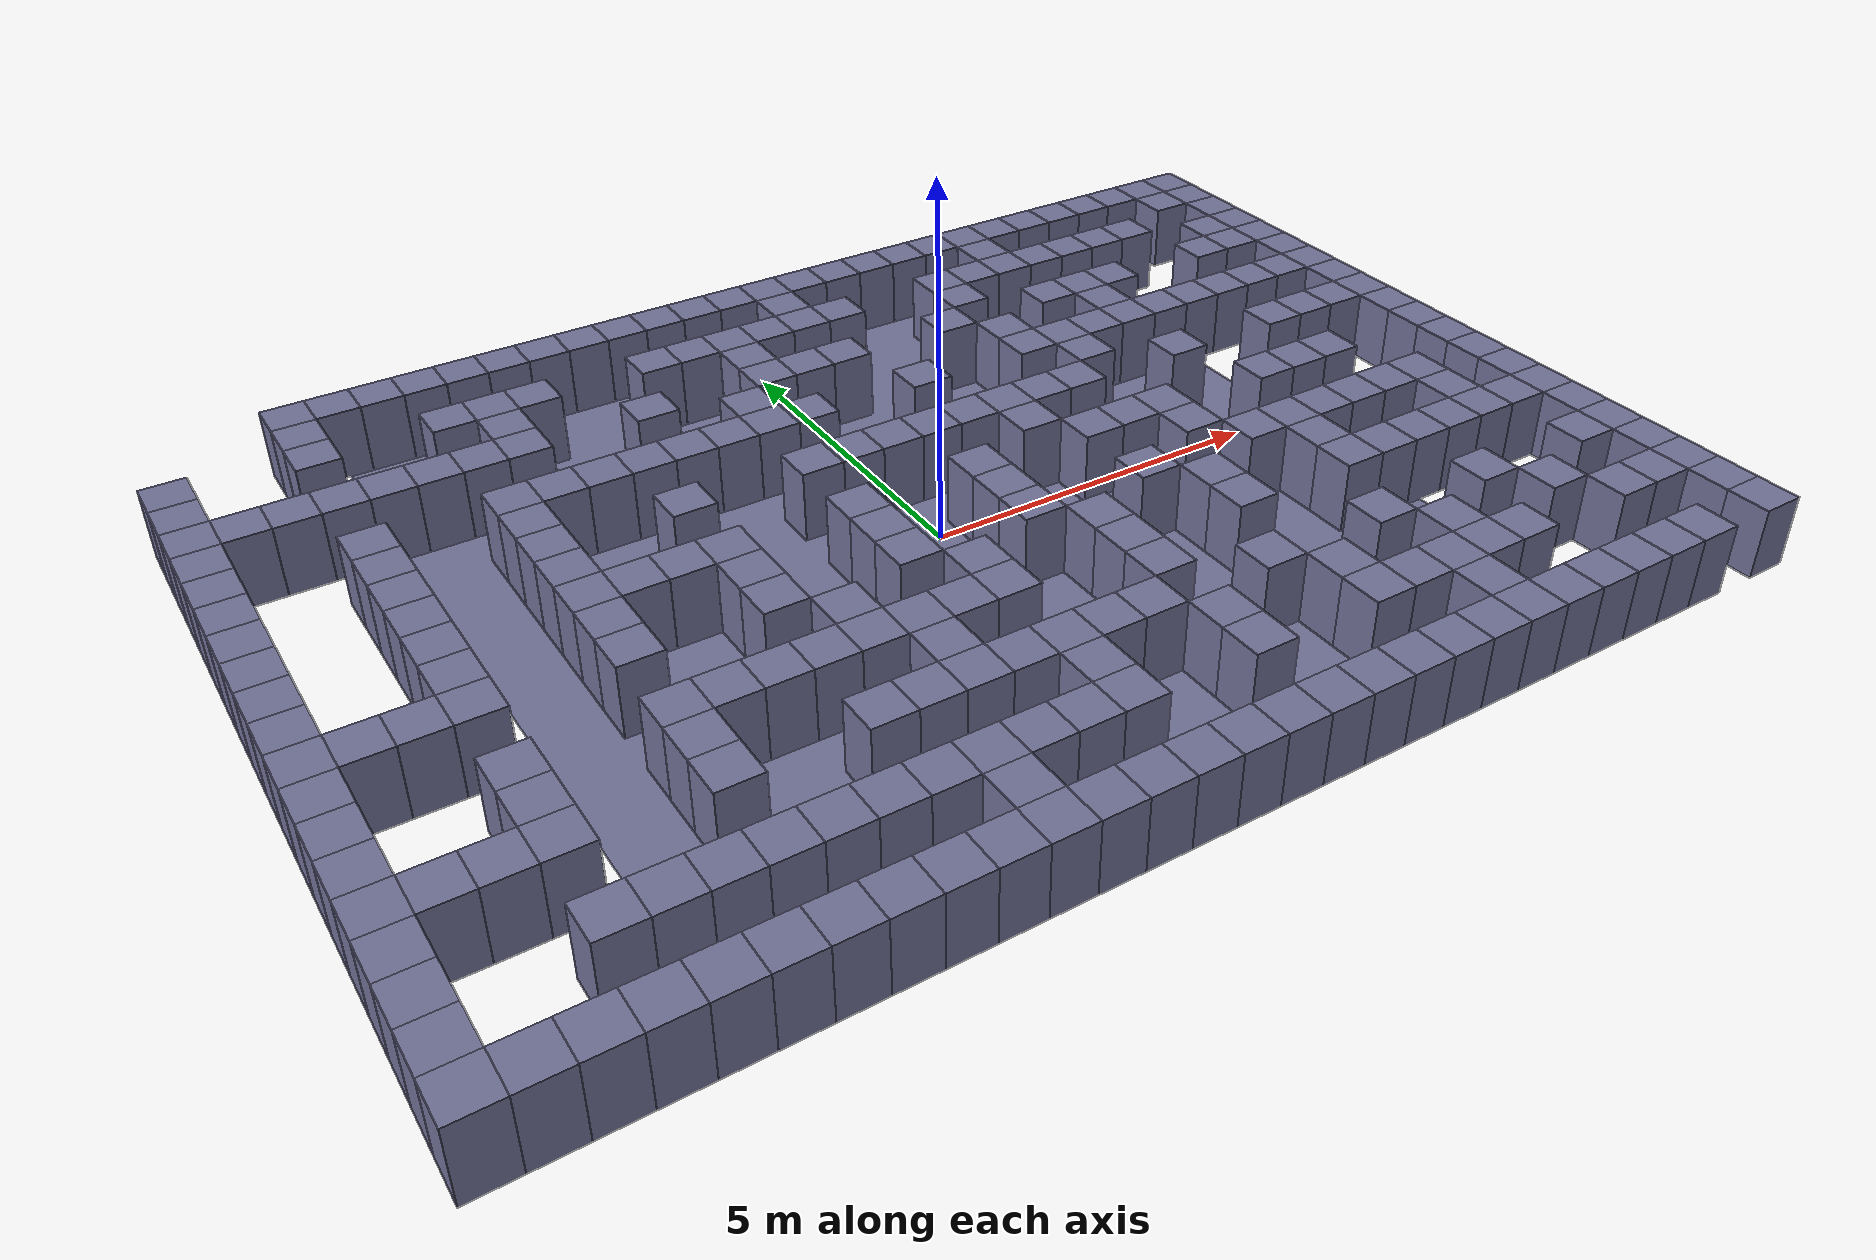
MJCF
<?xml version="1.0"?>
<mujoco model="pillar_maze">
  <compiler angle="radian" coordinate="local"/>
  <option gravity="0 0 -9.81" timestep="0.01" integrator="RK4"/>

  <default>
    <geom contype="1" conaffinity="1" friction="1 0.1 0.1" rgba="0.45 0.45 0.6 1"/>
  </default>

  <asset>
    <texture type="skybox" builtin="gradient" rgb1="0.3 0.5 0.7" rgb2="0 0 0" width="512" height="512"/>
    <texture name="floor_tex" type="2d" builtin="checker" rgb1="0.2 0.2 0.2" rgb2="0.3 0.3 0.3" width="512" height="512"/>
    <material name="floor_mat" texture="floor_tex" texrepeat="6 6" reflectance="0.2"/>
    <material name="wall_mat"  rgba="0.55 0.6 0.75 1"/>
  </asset>

  <worldbody>
    <geom name="floor" type="plane" pos="0 0 -0.02" size="6 6 0.1" material="floor_mat"/>

    <geom name="p_0_3" type="box" pos="-6.600 6.000 0.5" size="0.300 0.300 0.5" material="wall_mat"/>
    <geom name="p_0_4" type="box" pos="-6.000 6.000 0.5" size="0.300 0.300 0.5" material="wall_mat"/>
    <geom name="p_0_5" type="box" pos="-5.400 6.000 0.5" size="0.300 0.300 0.5" material="wall_mat"/>
    <geom name="p_0_6" type="box" pos="-4.800 6.000 0.5" size="0.300 0.300 0.5" material="wall_mat"/>
    <geom name="p_0_7" type="box" pos="-4.200 6.000 0.5" size="0.300 0.300 0.5" material="wall_mat"/>
    <geom name="p_0_8" type="box" pos="-3.600 6.000 0.5" size="0.300 0.300 0.5" material="wall_mat"/>
    <geom name="p_0_9" type="box" pos="-3.000 6.000 0.5" size="0.300 0.300 0.5" material="wall_mat"/>
    <geom name="p_0_10" type="box" pos="-2.400 6.000 0.5" size="0.300 0.300 0.5" material="wall_mat"/>
    <geom name="p_0_11" type="box" pos="-1.800 6.000 0.5" size="0.300 0.300 0.5" material="wall_mat"/>
    <geom name="p_0_12" type="box" pos="-1.200 6.000 0.5" size="0.300 0.300 0.5" material="wall_mat"/>
    <geom name="p_0_13" type="box" pos="-0.600 6.000 0.5" size="0.300 0.300 0.5" material="wall_mat"/>
    <geom name="p_0_14" type="box" pos="0.000 6.000 0.5" size="0.300 0.300 0.5" material="wall_mat"/>
    <geom name="p_0_15" type="box" pos="0.600 6.000 0.5" size="0.300 0.300 0.5" material="wall_mat"/>
    <geom name="p_0_16" type="box" pos="1.200 6.000 0.5" size="0.300 0.300 0.5" material="wall_mat"/>
    <geom name="p_0_17" type="box" pos="1.800 6.000 0.5" size="0.300 0.300 0.5" material="wall_mat"/>
    <geom name="p_0_18" type="box" pos="2.400 6.000 0.5" size="0.300 0.300 0.5" material="wall_mat"/>
    <geom name="p_0_19" type="box" pos="3.000 6.000 0.5" size="0.300 0.300 0.5" material="wall_mat"/>
    <geom name="p_0_20" type="box" pos="3.600 6.000 0.5" size="0.300 0.300 0.5" material="wall_mat"/>
    <geom name="p_0_21" type="box" pos="4.200 6.000 0.5" size="0.300 0.300 0.5" material="wall_mat"/>
    <geom name="p_0_22" type="box" pos="4.800 6.000 0.5" size="0.300 0.300 0.5" material="wall_mat"/>
    <geom name="p_0_23" type="box" pos="5.400 6.000 0.5" size="0.300 0.300 0.5" material="wall_mat"/>
    <geom name="p_0_24" type="box" pos="6.000 6.000 0.5" size="0.300 0.300 0.5" material="wall_mat"/>
    <geom name="p_0_25" type="box" pos="6.600 6.000 0.5" size="0.300 0.300 0.5" material="wall_mat"/>
    <geom name="p_0_26" type="box" pos="7.200 6.000 0.5" size="0.300 0.300 0.5" material="wall_mat"/>
    <geom name="p_0_27" type="box" pos="7.800 6.000 0.5" size="0.300 0.300 0.5" material="wall_mat"/>
    <geom name="p_0_28" type="box" pos="8.400 6.000 0.5" size="0.300 0.300 0.5" material="wall_mat"/>
    <geom name="p_1_3" type="box" pos="-6.600 5.400 0.5" size="0.300 0.300 0.5" material="wall_mat"/>
    <geom name="p_1_15" type="box" pos="0.600 5.400 0.5" size="0.300 0.300 0.5" material="wall_mat"/>
    <geom name="p_1_21" type="box" pos="4.200 5.400 0.5" size="0.300 0.300 0.5" material="wall_mat"/>
    <geom name="p_1_27" type="box" pos="7.800 5.400 0.5" size="0.300 0.300 0.5" material="wall_mat"/>
    <geom name="p_1_28" type="box" pos="8.400 5.400 0.5" size="0.300 0.300 0.5" material="wall_mat"/>
    <geom name="p_2_0" type="box" pos="-8.400 4.800 0.5" size="0.300 0.300 0.5" material="wall_mat"/>
    <geom name="p_2_3" type="box" pos="-6.600 4.800 0.5" size="0.300 0.300 0.5" material="wall_mat"/>
    <geom name="p_2_6" type="box" pos="-4.800 4.800 0.5" size="0.300 0.300 0.5" material="wall_mat"/>
    <geom name="p_2_7" type="box" pos="-4.200 4.800 0.5" size="0.300 0.300 0.5" material="wall_mat"/>
    <geom name="p_2_8" type="box" pos="-3.600 4.800 0.5" size="0.300 0.300 0.5" material="wall_mat"/>
    <geom name="p_2_11" type="box" pos="-1.800 4.800 0.5" size="0.300 0.300 0.5" material="wall_mat"/>
    <geom name="p_2_12" type="box" pos="-1.200 4.800 0.5" size="0.300 0.300 0.5" material="wall_mat"/>
    <geom name="p_2_13" type="box" pos="-0.600 4.800 0.5" size="0.300 0.300 0.5" material="wall_mat"/>
    <geom name="p_2_14" type="box" pos="0.000 4.800 0.5" size="0.300 0.300 0.5" material="wall_mat"/>
    <geom name="p_2_15" type="box" pos="0.600 4.800 0.5" size="0.300 0.300 0.5" material="wall_mat"/>
    <geom name="p_2_16" type="box" pos="1.200 4.800 0.5" size="0.300 0.300 0.5" material="wall_mat"/>
    <geom name="p_2_19" type="box" pos="3.000 4.800 0.5" size="0.300 0.300 0.5" material="wall_mat"/>
    <geom name="p_2_20" type="box" pos="3.600 4.800 0.5" size="0.300 0.300 0.5" material="wall_mat"/>
    <geom name="p_2_21" type="box" pos="4.200 4.800 0.5" size="0.300 0.300 0.5" material="wall_mat"/>
    <geom name="p_2_22" type="box" pos="4.800 4.800 0.5" size="0.300 0.300 0.5" material="wall_mat"/>
    <geom name="p_2_23" type="box" pos="5.400 4.800 0.5" size="0.300 0.300 0.5" material="wall_mat"/>
    <geom name="p_2_24" type="box" pos="6.000 4.800 0.5" size="0.300 0.300 0.5" material="wall_mat"/>
    <geom name="p_2_25" type="box" pos="6.600 4.800 0.5" size="0.300 0.300 0.5" material="wall_mat"/>
    <geom name="p_2_28" type="box" pos="8.400 4.800 0.5" size="0.300 0.300 0.5" material="wall_mat"/>
    <geom name="p_3_0" type="box" pos="-8.400 4.200 0.5" size="0.300 0.300 0.5" material="wall_mat"/>
    <geom name="p_3_7" type="box" pos="-4.200 4.200 0.5" size="0.300 0.300 0.5" material="wall_mat"/>
    <geom name="p_3_13" type="box" pos="-0.600 4.200 0.5" size="0.300 0.300 0.5" material="wall_mat"/>
    <geom name="p_3_19" type="box" pos="3.000 4.200 0.5" size="0.300 0.300 0.5" material="wall_mat"/>
    <geom name="p_3_27" type="box" pos="7.800 4.200 0.5" size="0.300 0.300 0.5" material="wall_mat"/>
    <geom name="p_3_28" type="box" pos="8.400 4.200 0.5" size="0.300 0.300 0.5" material="wall_mat"/>
    <geom name="p_4_0" type="box" pos="-8.400 3.600 0.5" size="0.300 0.300 0.5" material="wall_mat"/>
    <geom name="p_4_1" type="box" pos="-7.800 3.600 0.5" size="0.300 0.300 0.5" material="wall_mat"/>
    <geom name="p_4_2" type="box" pos="-7.200 3.600 0.5" size="0.300 0.300 0.5" material="wall_mat"/>
    <geom name="p_4_3" type="box" pos="-6.600 3.600 0.5" size="0.300 0.300 0.5" material="wall_mat"/>
    <geom name="p_4_4" type="box" pos="-6.000 3.600 0.5" size="0.300 0.300 0.5" material="wall_mat"/>
    <geom name="p_4_5" type="box" pos="-5.400 3.600 0.5" size="0.300 0.300 0.5" material="wall_mat"/>
    <geom name="p_4_6" type="box" pos="-4.800 3.600 0.5" size="0.300 0.300 0.5" material="wall_mat"/>
    <geom name="p_4_7" type="box" pos="-4.200 3.600 0.5" size="0.300 0.300 0.5" material="wall_mat"/>
    <geom name="p_4_10" type="box" pos="-2.400 3.600 0.5" size="0.300 0.300 0.5" material="wall_mat"/>
    <geom name="p_4_13" type="box" pos="-0.600 3.600 0.5" size="0.300 0.300 0.5" material="wall_mat"/>
    <geom name="p_4_14" type="box" pos="0.000 3.600 0.5" size="0.300 0.300 0.5" material="wall_mat"/>
    <geom name="p_4_15" type="box" pos="0.600 3.600 0.5" size="0.300 0.300 0.5" material="wall_mat"/>
    <geom name="p_4_18" type="box" pos="2.400 3.600 0.5" size="0.300 0.300 0.5" material="wall_mat"/>
    <geom name="p_4_21" type="box" pos="4.200 3.600 0.5" size="0.300 0.300 0.5" material="wall_mat"/>
    <geom name="p_4_22" type="box" pos="4.800 3.600 0.5" size="0.300 0.300 0.5" material="wall_mat"/>
    <geom name="p_4_23" type="box" pos="5.400 3.600 0.5" size="0.300 0.300 0.5" material="wall_mat"/>
    <geom name="p_4_26" type="box" pos="7.200 3.600 0.5" size="0.300 0.300 0.5" material="wall_mat"/>
    <geom name="p_4_27" type="box" pos="7.800 3.600 0.5" size="0.300 0.300 0.5" material="wall_mat"/>
    <geom name="p_4_28" type="box" pos="8.400 3.600 0.5" size="0.300 0.300 0.5" material="wall_mat"/>
    <geom name="p_5_0" type="box" pos="-8.400 3.000 0.5" size="0.300 0.300 0.5" material="wall_mat"/>
    <geom name="p_5_12" type="box" pos="-1.200 3.000 0.5" size="0.300 0.300 0.5" material="wall_mat"/>
    <geom name="p_5_19" type="box" pos="3.000 3.000 0.5" size="0.300 0.300 0.5" material="wall_mat"/>
    <geom name="p_5_22" type="box" pos="4.800 3.000 0.5" size="0.300 0.300 0.5" material="wall_mat"/>
    <geom name="p_5_28" type="box" pos="8.400 3.000 0.5" size="0.300 0.300 0.5" material="wall_mat"/>
    <geom name="p_6_0" type="box" pos="-8.400 2.400 0.5" size="0.300 0.300 0.5" material="wall_mat"/>
    <geom name="p_6_3" type="box" pos="-6.600 2.400 0.5" size="0.300 0.300 0.5" material="wall_mat"/>
    <geom name="p_6_6" type="box" pos="-4.800 2.400 0.5" size="0.300 0.300 0.5" material="wall_mat"/>
    <geom name="p_6_7" type="box" pos="-4.200 2.400 0.5" size="0.300 0.300 0.5" material="wall_mat"/>
    <geom name="p_6_8" type="box" pos="-3.600 2.400 0.5" size="0.300 0.300 0.5" material="wall_mat"/>
    <geom name="p_6_9" type="box" pos="-3.000 2.400 0.5" size="0.300 0.300 0.5" material="wall_mat"/>
    <geom name="p_6_10" type="box" pos="-2.400 2.400 0.5" size="0.300 0.300 0.5" material="wall_mat"/>
    <geom name="p_6_11" type="box" pos="-1.800 2.400 0.5" size="0.300 0.300 0.5" material="wall_mat"/>
    <geom name="p_6_12" type="box" pos="-1.200 2.400 0.5" size="0.300 0.300 0.5" material="wall_mat"/>
    <geom name="p_6_13" type="box" pos="-0.600 2.400 0.5" size="0.300 0.300 0.5" material="wall_mat"/>
    <geom name="p_6_16" type="box" pos="1.200 2.400 0.5" size="0.300 0.300 0.5" material="wall_mat"/>
    <geom name="p_6_19" type="box" pos="3.000 2.400 0.5" size="0.300 0.300 0.5" material="wall_mat"/>
    <geom name="p_6_20" type="box" pos="3.600 2.400 0.5" size="0.300 0.300 0.5" material="wall_mat"/>
    <geom name="p_6_21" type="box" pos="4.200 2.400 0.5" size="0.300 0.300 0.5" material="wall_mat"/>
    <geom name="p_6_22" type="box" pos="4.800 2.400 0.5" size="0.300 0.300 0.5" material="wall_mat"/>
    <geom name="p_6_23" type="box" pos="5.400 2.400 0.5" size="0.300 0.300 0.5" material="wall_mat"/>
    <geom name="p_6_24" type="box" pos="6.000 2.400 0.5" size="0.300 0.300 0.5" material="wall_mat"/>
    <geom name="p_6_25" type="box" pos="6.600 2.400 0.5" size="0.300 0.300 0.5" material="wall_mat"/>
    <geom name="p_6_26" type="box" pos="7.200 2.400 0.5" size="0.300 0.300 0.5" material="wall_mat"/>
    <geom name="p_6_27" type="box" pos="7.800 2.400 0.5" size="0.300 0.300 0.5" material="wall_mat"/>
    <geom name="p_6_28" type="box" pos="8.400 2.400 0.5" size="0.300 0.300 0.5" material="wall_mat"/>
    <geom name="p_7_0" type="box" pos="-8.400 1.800 0.5" size="0.300 0.300 0.5" material="wall_mat"/>
    <geom name="p_7_3" type="box" pos="-6.600 1.800 0.5" size="0.300 0.300 0.5" material="wall_mat"/>
    <geom name="p_7_6" type="box" pos="-4.800 1.800 0.5" size="0.300 0.300 0.5" material="wall_mat"/>
    <geom name="p_7_20" type="box" pos="3.600 1.800 0.5" size="0.300 0.300 0.5" material="wall_mat"/>
    <geom name="p_7_28" type="box" pos="8.400 1.800 0.5" size="0.300 0.300 0.5" material="wall_mat"/>
    <geom name="p_8_0" type="box" pos="-8.400 1.200 0.5" size="0.300 0.300 0.5" material="wall_mat"/>
    <geom name="p_8_3" type="box" pos="-6.600 1.200 0.5" size="0.300 0.300 0.5" material="wall_mat"/>
    <geom name="p_8_6" type="box" pos="-4.800 1.200 0.5" size="0.300 0.300 0.5" material="wall_mat"/>
    <geom name="p_8_9" type="box" pos="-3.000 1.200 0.5" size="0.300 0.300 0.5" material="wall_mat"/>
    <geom name="p_8_12" type="box" pos="-1.200 1.200 0.5" size="0.300 0.300 0.5" material="wall_mat"/>
    <geom name="p_8_13" type="box" pos="-0.600 1.200 0.5" size="0.300 0.300 0.5" material="wall_mat"/>
    <geom name="p_8_14" type="box" pos="0.000 1.200 0.5" size="0.300 0.300 0.5" material="wall_mat"/>
    <geom name="p_8_15" type="box" pos="0.600 1.200 0.5" size="0.300 0.300 0.5" material="wall_mat"/>
    <geom name="p_8_16" type="box" pos="1.200 1.200 0.5" size="0.300 0.300 0.5" material="wall_mat"/>
    <geom name="p_8_17" type="box" pos="1.800 1.200 0.5" size="0.300 0.300 0.5" material="wall_mat"/>
    <geom name="p_8_18" type="box" pos="2.400 1.200 0.5" size="0.300 0.300 0.5" material="wall_mat"/>
    <geom name="p_8_19" type="box" pos="3.000 1.200 0.5" size="0.300 0.300 0.5" material="wall_mat"/>
    <geom name="p_8_22" type="box" pos="4.800 1.200 0.5" size="0.300 0.300 0.5" material="wall_mat"/>
    <geom name="p_8_25" type="box" pos="6.600 1.200 0.5" size="0.300 0.300 0.5" material="wall_mat"/>
    <geom name="p_8_26" type="box" pos="7.200 1.200 0.5" size="0.300 0.300 0.5" material="wall_mat"/>
    <geom name="p_8_27" type="box" pos="7.800 1.200 0.5" size="0.300 0.300 0.5" material="wall_mat"/>
    <geom name="p_8_28" type="box" pos="8.400 1.200 0.5" size="0.300 0.300 0.5" material="wall_mat"/>
    <geom name="p_9_0" type="box" pos="-8.400 0.600 0.5" size="0.300 0.300 0.5" material="wall_mat"/>
    <geom name="p_9_3" type="box" pos="-6.600 0.600 0.5" size="0.300 0.300 0.5" material="wall_mat"/>
    <geom name="p_9_6" type="box" pos="-4.800 0.600 0.5" size="0.300 0.300 0.5" material="wall_mat"/>
    <geom name="p_9_17" type="box" pos="1.800 0.600 0.5" size="0.300 0.300 0.5" material="wall_mat"/>
    <geom name="p_9_28" type="box" pos="8.400 0.600 0.5" size="0.300 0.300 0.5" material="wall_mat"/>
    <geom name="p_10_0" type="box" pos="-8.400 0.000 0.5" size="0.300 0.300 0.5" material="wall_mat"/>
    <geom name="p_10_3" type="box" pos="-6.600 0.000 0.5" size="0.300 0.300 0.5" material="wall_mat"/>
    <geom name="p_10_6" type="box" pos="-4.800 0.000 0.5" size="0.300 0.300 0.5" material="wall_mat"/>
    <geom name="p_10_7" type="box" pos="-4.200 0.000 0.5" size="0.300 0.300 0.5" material="wall_mat"/>
    <geom name="p_10_8" type="box" pos="-3.600 0.000 0.5" size="0.300 0.300 0.5" material="wall_mat"/>
    <geom name="p_10_9" type="box" pos="-3.000 0.000 0.5" size="0.300 0.300 0.5" material="wall_mat"/>
    <geom name="p_10_12" type="box" pos="-1.200 0.000 0.5" size="0.300 0.300 0.5" material="wall_mat"/>
    <geom name="p_10_15" type="box" pos="0.600 0.000 0.5" size="0.300 0.300 0.5" material="wall_mat"/>
    <geom name="p_10_18" type="box" pos="2.400 0.000 0.5" size="0.300 0.300 0.5" material="wall_mat"/>
    <geom name="p_10_19" type="box" pos="3.000 0.000 0.5" size="0.300 0.300 0.5" material="wall_mat"/>
    <geom name="p_10_20" type="box" pos="3.600 0.000 0.5" size="0.300 0.300 0.5" material="wall_mat"/>
    <geom name="p_10_23" type="box" pos="5.400 0.000 0.5" size="0.300 0.300 0.5" material="wall_mat"/>
    <geom name="p_10_24" type="box" pos="6.000 0.000 0.5" size="0.300 0.300 0.5" material="wall_mat"/>
    <geom name="p_10_25" type="box" pos="6.600 0.000 0.5" size="0.300 0.300 0.5" material="wall_mat"/>
    <geom name="p_10_28" type="box" pos="8.400 0.000 0.5" size="0.300 0.300 0.5" material="wall_mat"/>
    <geom name="p_11_0" type="box" pos="-8.400 -0.600 0.5" size="0.300 0.300 0.5" material="wall_mat"/>
    <geom name="p_11_3" type="box" pos="-6.600 -0.600 0.5" size="0.300 0.300 0.5" material="wall_mat"/>
    <geom name="p_11_6" type="box" pos="-4.800 -0.600 0.5" size="0.300 0.300 0.5" material="wall_mat"/>
    <geom name="p_11_9" type="box" pos="-3.000 -0.600 0.5" size="0.300 0.300 0.5" material="wall_mat"/>
    <geom name="p_11_12" type="box" pos="-1.200 -0.600 0.5" size="0.300 0.300 0.5" material="wall_mat"/>
    <geom name="p_11_15" type="box" pos="0.600 -0.600 0.5" size="0.300 0.300 0.5" material="wall_mat"/>
    <geom name="p_11_20" type="box" pos="3.600 -0.600 0.5" size="0.300 0.300 0.5" material="wall_mat"/>
    <geom name="p_11_28" type="box" pos="8.400 -0.600 0.5" size="0.300 0.300 0.5" material="wall_mat"/>
    <geom name="p_12_0" type="box" pos="-8.400 -1.200 0.5" size="0.300 0.300 0.5" material="wall_mat"/>
    <geom name="p_12_1" type="box" pos="-7.800 -1.200 0.5" size="0.300 0.300 0.5" material="wall_mat"/>
    <geom name="p_12_2" type="box" pos="-7.200 -1.200 0.5" size="0.300 0.300 0.5" material="wall_mat"/>
    <geom name="p_12_3" type="box" pos="-6.600 -1.200 0.5" size="0.300 0.300 0.5" material="wall_mat"/>
    <geom name="p_12_6" type="box" pos="-4.800 -1.200 0.5" size="0.300 0.300 0.5" material="wall_mat"/>
    <geom name="p_12_9" type="box" pos="-3.000 -1.200 0.5" size="0.300 0.300 0.5" material="wall_mat"/>
    <geom name="p_12_12" type="box" pos="-1.200 -1.200 0.5" size="0.300 0.300 0.5" material="wall_mat"/>
    <geom name="p_12_15" type="box" pos="0.600 -1.200 0.5" size="0.300 0.300 0.5" material="wall_mat"/>
    <geom name="p_12_18" type="box" pos="2.400 -1.200 0.5" size="0.300 0.300 0.5" material="wall_mat"/>
    <geom name="p_12_21" type="box" pos="4.200 -1.200 0.5" size="0.300 0.300 0.5" material="wall_mat"/>
    <geom name="p_12_22" type="box" pos="4.800 -1.200 0.5" size="0.300 0.300 0.5" material="wall_mat"/>
    <geom name="p_12_23" type="box" pos="5.400 -1.200 0.5" size="0.300 0.300 0.5" material="wall_mat"/>
    <geom name="p_12_24" type="box" pos="6.000 -1.200 0.5" size="0.300 0.300 0.5" material="wall_mat"/>
    <geom name="p_12_25" type="box" pos="6.600 -1.200 0.5" size="0.300 0.300 0.5" material="wall_mat"/>
    <geom name="p_12_26" type="box" pos="7.200 -1.200 0.5" size="0.300 0.300 0.5" material="wall_mat"/>
    <geom name="p_12_28" type="box" pos="8.400 -1.200 0.5" size="0.300 0.300 0.5" material="wall_mat"/>
    <geom name="p_13_0" type="box" pos="-8.400 -1.800 0.5" size="0.300 0.300 0.5" material="wall_mat"/>
    <geom name="p_13_10" type="box" pos="-2.400 -1.800 0.5" size="0.300 0.300 0.5" material="wall_mat"/>
    <geom name="p_13_13" type="box" pos="-0.600 -1.800 0.5" size="0.300 0.300 0.5" material="wall_mat"/>
    <geom name="p_13_16" type="box" pos="1.200 -1.800 0.5" size="0.300 0.300 0.5" material="wall_mat"/>
    <geom name="p_13_19" type="box" pos="3.000 -1.800 0.5" size="0.300 0.300 0.5" material="wall_mat"/>
    <geom name="p_13_22" type="box" pos="4.800 -1.800 0.5" size="0.300 0.300 0.5" material="wall_mat"/>
    <geom name="p_13_26" type="box" pos="7.200 -1.800 0.5" size="0.300 0.300 0.5" material="wall_mat"/>
    <geom name="p_13_28" type="box" pos="8.400 -1.800 0.5" size="0.300 0.300 0.5" material="wall_mat"/>
    <geom name="p_14_0" type="box" pos="-8.400 -2.400 0.5" size="0.300 0.300 0.5" material="wall_mat"/>
    <geom name="p_14_3" type="box" pos="-6.600 -2.400 0.5" size="0.300 0.300 0.5" material="wall_mat"/>
    <geom name="p_14_6" type="box" pos="-4.800 -2.400 0.5" size="0.300 0.300 0.5" material="wall_mat"/>
    <geom name="p_14_7" type="box" pos="-4.200 -2.400 0.5" size="0.300 0.300 0.5" material="wall_mat"/>
    <geom name="p_14_8" type="box" pos="-3.600 -2.400 0.5" size="0.300 0.300 0.5" material="wall_mat"/>
    <geom name="p_14_9" type="box" pos="-3.000 -2.400 0.5" size="0.300 0.300 0.5" material="wall_mat"/>
    <geom name="p_14_10" type="box" pos="-2.400 -2.400 0.5" size="0.300 0.300 0.5" material="wall_mat"/>
    <geom name="p_14_11" type="box" pos="-1.800 -2.400 0.5" size="0.300 0.300 0.5" material="wall_mat"/>
    <geom name="p_14_12" type="box" pos="-1.200 -2.400 0.5" size="0.300 0.300 0.5" material="wall_mat"/>
    <geom name="p_14_13" type="box" pos="-0.600 -2.400 0.5" size="0.300 0.300 0.5" material="wall_mat"/>
    <geom name="p_14_16" type="box" pos="1.200 -2.400 0.5" size="0.300 0.300 0.5" material="wall_mat"/>
    <geom name="p_14_19" type="box" pos="3.000 -2.400 0.5" size="0.300 0.300 0.5" material="wall_mat"/>
    <geom name="p_14_22" type="box" pos="4.800 -2.400 0.5" size="0.300 0.300 0.5" material="wall_mat"/>
    <geom name="p_14_23" type="box" pos="5.400 -2.400 0.5" size="0.300 0.300 0.5" material="wall_mat"/>
    <geom name="p_14_24" type="box" pos="6.000 -2.400 0.5" size="0.300 0.300 0.5" material="wall_mat"/>
    <geom name="p_14_25" type="box" pos="6.600 -2.400 0.5" size="0.300 0.300 0.5" material="wall_mat"/>
    <geom name="p_14_26" type="box" pos="7.200 -2.400 0.5" size="0.300 0.300 0.5" material="wall_mat"/>
    <geom name="p_14_27" type="box" pos="7.800 -2.400 0.5" size="0.300 0.300 0.5" material="wall_mat"/>
    <geom name="p_14_28" type="box" pos="8.400 -2.400 0.5" size="0.300 0.300 0.5" material="wall_mat"/>
    <geom name="p_15_0" type="box" pos="-8.400 -3.000 0.5" size="0.300 0.300 0.5" material="wall_mat"/>
    <geom name="p_15_3" type="box" pos="-6.600 -3.000 0.5" size="0.300 0.300 0.5" material="wall_mat"/>
    <geom name="p_15_6" type="box" pos="-4.800 -3.000 0.5" size="0.300 0.300 0.5" material="wall_mat"/>
    <geom name="p_15_11" type="box" pos="-1.800 -3.000 0.5" size="0.300 0.300 0.5" material="wall_mat"/>
    <geom name="p_15_16" type="box" pos="1.200 -3.000 0.5" size="0.300 0.300 0.5" material="wall_mat"/>
    <geom name="p_15_28" type="box" pos="8.400 -3.000 0.5" size="0.300 0.300 0.5" material="wall_mat"/>
    <geom name="p_16_0" type="box" pos="-8.400 -3.600 0.5" size="0.300 0.300 0.5" material="wall_mat"/>
    <geom name="p_16_1" type="box" pos="-7.800 -3.600 0.5" size="0.300 0.300 0.5" material="wall_mat"/>
    <geom name="p_16_2" type="box" pos="-7.200 -3.600 0.5" size="0.300 0.300 0.5" material="wall_mat"/>
    <geom name="p_16_3" type="box" pos="-6.600 -3.600 0.5" size="0.300 0.300 0.5" material="wall_mat"/>
    <geom name="p_16_6" type="box" pos="-4.800 -3.600 0.5" size="0.300 0.300 0.5" material="wall_mat"/>
    <geom name="p_16_9" type="box" pos="-3.000 -3.600 0.5" size="0.300 0.300 0.5" material="wall_mat"/>
    <geom name="p_16_10" type="box" pos="-2.400 -3.600 0.5" size="0.300 0.300 0.5" material="wall_mat"/>
    <geom name="p_16_11" type="box" pos="-1.800 -3.600 0.5" size="0.300 0.300 0.5" material="wall_mat"/>
    <geom name="p_16_12" type="box" pos="-1.200 -3.600 0.5" size="0.300 0.300 0.5" material="wall_mat"/>
    <geom name="p_16_13" type="box" pos="-0.600 -3.600 0.5" size="0.300 0.300 0.5" material="wall_mat"/>
    <geom name="p_16_14" type="box" pos="0.000 -3.600 0.5" size="0.300 0.300 0.5" material="wall_mat"/>
    <geom name="p_16_15" type="box" pos="0.600 -3.600 0.5" size="0.300 0.300 0.5" material="wall_mat"/>
    <geom name="p_16_18" type="box" pos="2.400 -3.600 0.5" size="0.300 0.300 0.5" material="wall_mat"/>
    <geom name="p_16_21" type="box" pos="4.200 -3.600 0.5" size="0.300 0.300 0.5" material="wall_mat"/>
    <geom name="p_16_24" type="box" pos="6.000 -3.600 0.5" size="0.300 0.300 0.5" material="wall_mat"/>
    <geom name="p_16_27" type="box" pos="7.800 -3.600 0.5" size="0.300 0.300 0.5" material="wall_mat"/>
    <geom name="p_16_28" type="box" pos="8.400 -3.600 0.5" size="0.300 0.300 0.5" material="wall_mat"/>
    <geom name="p_17_0" type="box" pos="-8.400 -4.200 0.5" size="0.300 0.300 0.5" material="wall_mat"/>
    <geom name="p_17_13" type="box" pos="-0.600 -4.200 0.5" size="0.300 0.300 0.5" material="wall_mat"/>
    <geom name="p_17_16" type="box" pos="1.200 -4.200 0.5" size="0.300 0.300 0.5" material="wall_mat"/>
    <geom name="p_17_19" type="box" pos="3.000 -4.200 0.5" size="0.300 0.300 0.5" material="wall_mat"/>
    <geom name="p_17_22" type="box" pos="4.800 -4.200 0.5" size="0.300 0.300 0.5" material="wall_mat"/>
    <geom name="p_17_25" type="box" pos="6.600 -4.200 0.5" size="0.300 0.300 0.5" material="wall_mat"/>
    <geom name="p_17_28" type="box" pos="8.400 -4.200 0.5" size="0.300 0.300 0.5" material="wall_mat"/>
    <geom name="p_18_0" type="box" pos="-8.400 -4.800 0.5" size="0.300 0.300 0.5" material="wall_mat"/>
    <geom name="p_18_3" type="box" pos="-6.600 -4.800 0.5" size="0.300 0.300 0.5" material="wall_mat"/>
    <geom name="p_18_4" type="box" pos="-6.000 -4.800 0.5" size="0.300 0.300 0.5" material="wall_mat"/>
    <geom name="p_18_5" type="box" pos="-5.400 -4.800 0.5" size="0.300 0.300 0.5" material="wall_mat"/>
    <geom name="p_18_6" type="box" pos="-4.800 -4.800 0.5" size="0.300 0.300 0.5" material="wall_mat"/>
    <geom name="p_18_7" type="box" pos="-4.200 -4.800 0.5" size="0.300 0.300 0.5" material="wall_mat"/>
    <geom name="p_18_8" type="box" pos="-3.600 -4.800 0.5" size="0.300 0.300 0.5" material="wall_mat"/>
    <geom name="p_18_9" type="box" pos="-3.000 -4.800 0.5" size="0.300 0.300 0.5" material="wall_mat"/>
    <geom name="p_18_10" type="box" pos="-2.400 -4.800 0.5" size="0.300 0.300 0.5" material="wall_mat"/>
    <geom name="p_18_11" type="box" pos="-1.800 -4.800 0.5" size="0.300 0.300 0.5" material="wall_mat"/>
    <geom name="p_18_12" type="box" pos="-1.200 -4.800 0.5" size="0.300 0.300 0.5" material="wall_mat"/>
    <geom name="p_18_13" type="box" pos="-0.600 -4.800 0.5" size="0.300 0.300 0.5" material="wall_mat"/>
    <geom name="p_18_16" type="box" pos="1.200 -4.800 0.5" size="0.300 0.300 0.5" material="wall_mat"/>
    <geom name="p_18_19" type="box" pos="3.000 -4.800 0.5" size="0.300 0.300 0.5" material="wall_mat"/>
    <geom name="p_18_20" type="box" pos="3.600 -4.800 0.5" size="0.300 0.300 0.5" material="wall_mat"/>
    <geom name="p_18_21" type="box" pos="4.200 -4.800 0.5" size="0.300 0.300 0.5" material="wall_mat"/>
    <geom name="p_18_22" type="box" pos="4.800 -4.800 0.5" size="0.300 0.300 0.5" material="wall_mat"/>
    <geom name="p_18_23" type="box" pos="5.400 -4.800 0.5" size="0.300 0.300 0.5" material="wall_mat"/>
    <geom name="p_18_26" type="box" pos="7.200 -4.800 0.5" size="0.300 0.300 0.5" material="wall_mat"/>
    <geom name="p_18_27" type="box" pos="7.800 -4.800 0.5" size="0.300 0.300 0.5" material="wall_mat"/>
    <geom name="p_18_28" type="box" pos="8.400 -4.800 0.5" size="0.300 0.300 0.5" material="wall_mat"/>
    <geom name="p_19_0" type="box" pos="-8.400 -5.400 0.5" size="0.300 0.300 0.5" material="wall_mat"/>
    <geom name="p_19_10" type="box" pos="-2.400 -5.400 0.5" size="0.300 0.300 0.5" material="wall_mat"/>
    <geom name="p_19_21" type="box" pos="4.200 -5.400 0.5" size="0.300 0.300 0.5" material="wall_mat"/>
    <geom name="p_19_28" type="box" pos="8.400 -5.400 0.5" size="0.300 0.300 0.5" material="wall_mat"/>
    <geom name="p_20_0" type="box" pos="-8.400 -6.000 0.5" size="0.300 0.300 0.5" material="wall_mat"/>
    <geom name="p_20_1" type="box" pos="-7.800 -6.000 0.5" size="0.300 0.300 0.5" material="wall_mat"/>
    <geom name="p_20_2" type="box" pos="-7.200 -6.000 0.5" size="0.300 0.300 0.5" material="wall_mat"/>
    <geom name="p_20_3" type="box" pos="-6.600 -6.000 0.5" size="0.300 0.300 0.5" material="wall_mat"/>
    <geom name="p_20_4" type="box" pos="-6.000 -6.000 0.5" size="0.300 0.300 0.5" material="wall_mat"/>
    <geom name="p_20_5" type="box" pos="-5.400 -6.000 0.5" size="0.300 0.300 0.5" material="wall_mat"/>
    <geom name="p_20_6" type="box" pos="-4.800 -6.000 0.5" size="0.300 0.300 0.5" material="wall_mat"/>
    <geom name="p_20_7" type="box" pos="-4.200 -6.000 0.5" size="0.300 0.300 0.5" material="wall_mat"/>
    <geom name="p_20_8" type="box" pos="-3.600 -6.000 0.5" size="0.300 0.300 0.5" material="wall_mat"/>
    <geom name="p_20_9" type="box" pos="-3.000 -6.000 0.5" size="0.300 0.300 0.5" material="wall_mat"/>
    <geom name="p_20_10" type="box" pos="-2.400 -6.000 0.5" size="0.300 0.300 0.5" material="wall_mat"/>
    <geom name="p_20_11" type="box" pos="-1.800 -6.000 0.5" size="0.300 0.300 0.5" material="wall_mat"/>
    <geom name="p_20_12" type="box" pos="-1.200 -6.000 0.5" size="0.300 0.300 0.5" material="wall_mat"/>
    <geom name="p_20_13" type="box" pos="-0.600 -6.000 0.5" size="0.300 0.300 0.5" material="wall_mat"/>
    <geom name="p_20_14" type="box" pos="0.000 -6.000 0.5" size="0.300 0.300 0.5" material="wall_mat"/>
    <geom name="p_20_15" type="box" pos="0.600 -6.000 0.5" size="0.300 0.300 0.5" material="wall_mat"/>
    <geom name="p_20_16" type="box" pos="1.200 -6.000 0.5" size="0.300 0.300 0.5" material="wall_mat"/>
    <geom name="p_20_17" type="box" pos="1.800 -6.000 0.5" size="0.300 0.300 0.5" material="wall_mat"/>
    <geom name="p_20_18" type="box" pos="2.400 -6.000 0.5" size="0.300 0.300 0.5" material="wall_mat"/>
    <geom name="p_20_19" type="box" pos="3.000 -6.000 0.5" size="0.300 0.300 0.5" material="wall_mat"/>
    <geom name="p_20_20" type="box" pos="3.600 -6.000 0.5" size="0.300 0.300 0.5" material="wall_mat"/>
    <geom name="p_20_21" type="box" pos="4.200 -6.000 0.5" size="0.300 0.300 0.5" material="wall_mat"/>
    <geom name="p_20_22" type="box" pos="4.800 -6.000 0.5" size="0.300 0.300 0.5" material="wall_mat"/>
    <geom name="p_20_23" type="box" pos="5.400 -6.000 0.5" size="0.300 0.300 0.5" material="wall_mat"/>
    <geom name="p_20_24" type="box" pos="6.000 -6.000 0.5" size="0.300 0.300 0.5" material="wall_mat"/>
    <geom name="p_20_25" type="box" pos="6.600 -6.000 0.5" size="0.300 0.300 0.5" material="wall_mat"/>
    <geom name="p_20_26" type="box" pos="7.200 -6.000 0.5" size="0.300 0.300 0.5" material="wall_mat"/>
    <geom name="p_20_28" type="box" pos="8.400 -6.000 0.5" size="0.300 0.300 0.5" material="wall_mat"/>

    <light diffuse="0.9 0.9 0.9" pos="0 0 6" dir="0 0 -1"/>
  </worldbody>
</mujoco>
